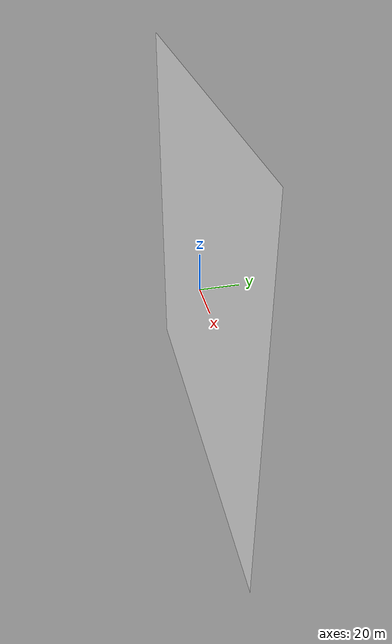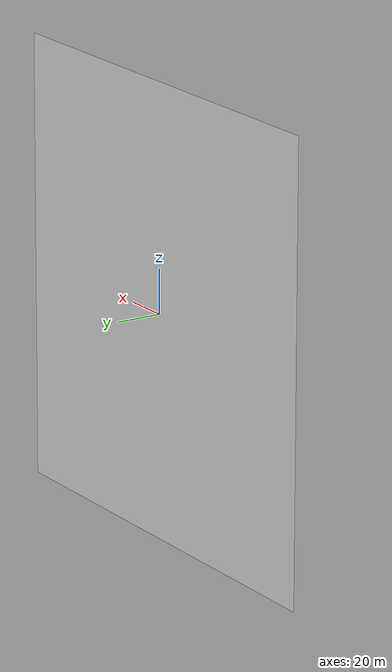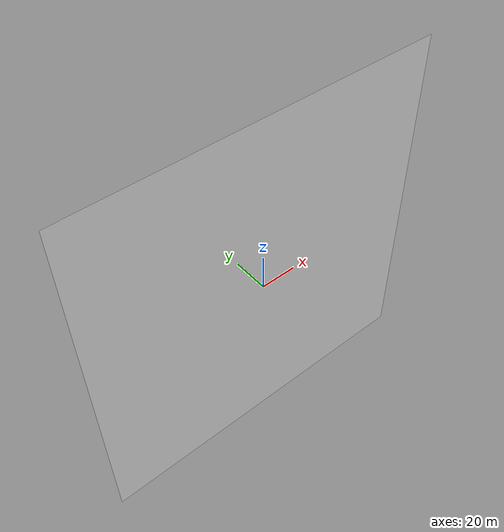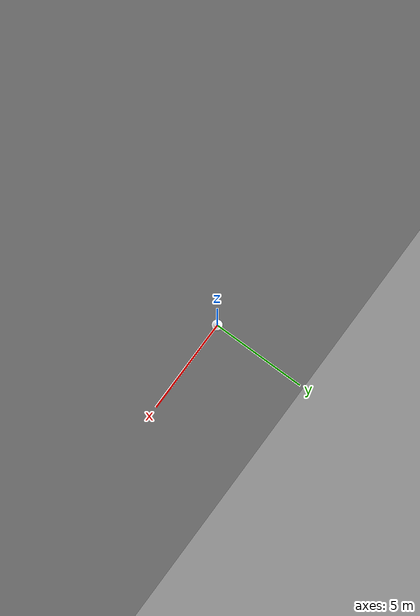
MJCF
<mujoco model="alcohol_lamp">
  <asset>
    <mesh file="alcohol_lamp.obj"/>
  </asset>
  <worldbody>
    <light directional="true" pos="0 0 3" dir="0 0 -1"/>
    <body name="alcohol_lamp" pos="0.0029613290305048946 -0.001302870381238406 -0.2776872340195266">
      <freejoint/>
      <geom mesh="alcohol_lamp" type="mesh" rgba="180 180 180 255"/>
    </body>
    <body name="bg_body" pos="0 -0.5 0">
      <geom name="bg_plane" type="box" size="100 0.001 100" rgba="1 1 1 1" contype="0" conaffinity="0" group="0"/>
    </body>
  </worldbody>
</mujoco>
